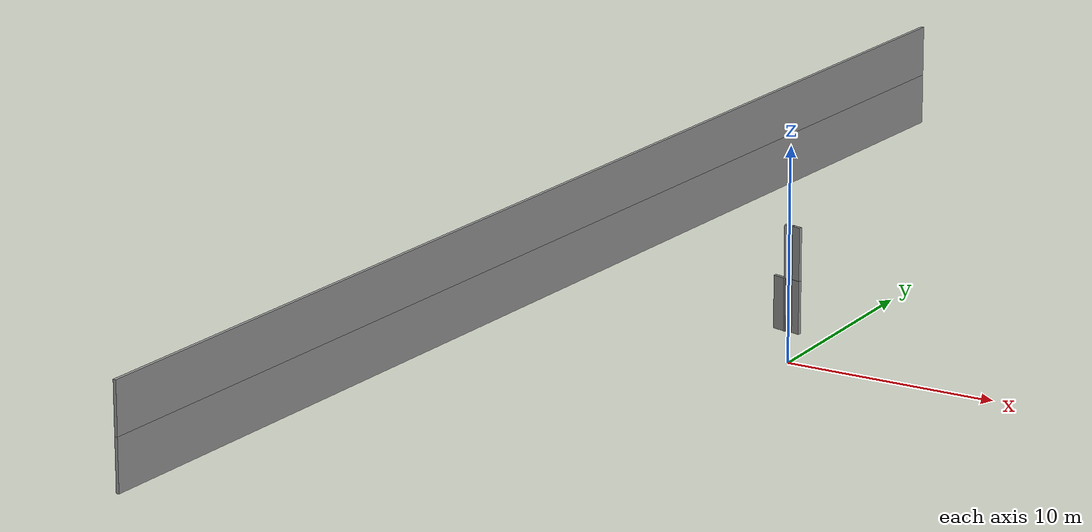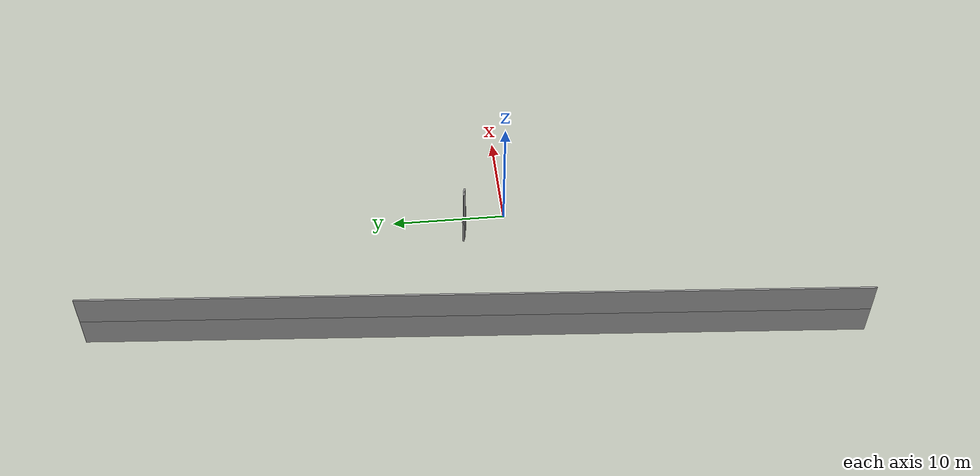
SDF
<sdf version="1.7">
 <model name="EnvDC01">
  <link name="Wall_128">
   <pose>-13.8802 3.78282 0 0 0 -1.64555</pose>
   <visual name="Wall_128_Visual">
    <pose>0 0 1.25 0 -0 0</pose>
    <geometry><box><size>64.2999 0.15 2.5</size></box></geometry>
    <material>
     <script><uri>file://media/materials/scripts/gazebo.material</uri><name>Gazebo/Grey</name></script>
     <ambient>1 1 1 1</ambient>
     <shader type="pixel"/>
    </material>
    <meta><layer>0</layer></meta>
   </visual>
   <collision name="Wall_128_Collision">
    <pose>0 0 1.25 0 -0 0</pose>
    <geometry><box><size>64.2999 0.15 2.5</size></box></geometry>
    <surface>
     <friction>
      <ode><mu>1</mu><mu2>1</mu2><fdir1>0 0 0</fdir1><slip1>0</slip1><slip2>0</slip2></ode>
      <torsional>
       <coefficient>1</coefficient>
       <patch_radius>0</patch_radius>
       <surface_radius>0</surface_radius>
       <use_patch_radius>1</use_patch_radius>
       <ode><slip>0</slip></ode>
      </torsional>
     </friction>
     <bounce><restitution_coefficient>0</restitution_coefficient><threshold>1e+06</threshold></bounce>
     <contact>
      <collide_without_contact>0</collide_without_contact>
      <collide_without_contact_bitmask>1</collide_without_contact_bitmask>
      <collide_bitmask>1</collide_bitmask>
      <ode>
       <soft_cfm>0</soft_cfm>
       <soft_erp>0.2</soft_erp>
       <kp>1e+13</kp>
       <kd>1</kd>
       <max_vel>0.01</max_vel>
       <min_depth>0</min_depth>
      </ode>
      <bullet>
       <split_impulse>1</split_impulse>
       <split_impulse_penetration_threshold>-0.01</split_impulse_penetration_threshold>
       <soft_cfm>0</soft_cfm>
       <soft_erp>0.2</soft_erp>
       <kp>1e+13</kp>
       <kd>1</kd>
      </bullet>
     </contact>
    </surface>
   </collision>
  </link>
  <link name="Wall_162">
   <pose>-1.63367 3.7136 0 0 -0 2.87979</pose>
   <visual name="Wall_162_Visual">
    <pose>0 0 1.25 0 -0 0</pose>
    <geometry><box><size>0.5 0.15 2.5</size></box></geometry>
    <material>
     <script><uri>file://media/materials/scripts/gazebo.material</uri><name>Gazebo/Grey</name></script>
     <ambient>1 1 1 1</ambient>
     <shader type="pixel"/>
    </material>
    <meta><layer>0</layer></meta>
   </visual>
   <collision name="Wall_162_Collision">
    <pose>0 0 1.25 0 -0 0</pose>
    <geometry><box><size>0.5 0.15 2.5</size></box></geometry>
    <surface>
     <friction>
      <ode><mu>1</mu><mu2>1</mu2><fdir1>0 0 0</fdir1><slip1>0</slip1><slip2>0</slip2></ode>
      <torsional>
       <coefficient>1</coefficient>
       <patch_radius>0</patch_radius>
       <surface_radius>0</surface_radius>
       <use_patch_radius>1</use_patch_radius>
       <ode><slip>0</slip></ode>
      </torsional>
     </friction>
     <bounce><restitution_coefficient>0</restitution_coefficient><threshold>1e+06</threshold></bounce>
     <contact>
      <collide_without_contact>0</collide_without_contact>
      <collide_without_contact_bitmask>1</collide_without_contact_bitmask>
      <collide_bitmask>1</collide_bitmask>
      <ode>
       <soft_cfm>0</soft_cfm>
       <soft_erp>0.2</soft_erp>
       <kp>1e+13</kp>
       <kd>1</kd>
       <max_vel>0.01</max_vel>
       <min_depth>0</min_depth>
      </ode>
      <bullet>
       <split_impulse>1</split_impulse>
       <split_impulse_penetration_threshold>-0.01</split_impulse_penetration_threshold>
       <soft_cfm>0</soft_cfm>
       <soft_erp>0.2</soft_erp>
       <kp>1e+13</kp>
       <kd>1</kd>
      </bullet>
     </contact>
    </surface>
   </collision>
  </link>
  <link name="Wall_163">
   <pose>-1.97771 3.75889 0 0 -0 3.14159</pose>
   <visual name="Wall_163_Visual">
    <pose>0 0 1.25 0 -0 0</pose>
    <geometry><box><size>0.5 0.15 2.5</size></box></geometry>
    <material>
     <script><uri>file://media/materials/scripts/gazebo.material</uri><name>Gazebo/Grey</name></script>
     <ambient>1 1 1 1</ambient>
     <shader type="pixel"/>
    </material>
    <meta><layer>0</layer></meta>
   </visual>
   <collision name="Wall_163_Collision">
    <pose>0 0 1.25 0 -0 0</pose>
    <geometry><box><size>0.5 0.15 2.5</size></box></geometry>
    <surface>
     <friction>
      <ode><mu>1</mu><mu2>1</mu2><fdir1>0 0 0</fdir1><slip1>0</slip1><slip2>0</slip2></ode>
      <torsional>
       <coefficient>1</coefficient>
       <patch_radius>0</patch_radius>
       <surface_radius>0</surface_radius>
       <use_patch_radius>1</use_patch_radius>
       <ode><slip>0</slip></ode>
      </torsional>
     </friction>
     <bounce><restitution_coefficient>0</restitution_coefficient><threshold>1e+06</threshold></bounce>
     <contact>
      <collide_without_contact>0</collide_without_contact>
      <collide_without_contact_bitmask>1</collide_without_contact_bitmask>
      <collide_bitmask>1</collide_bitmask>
      <ode>
       <soft_cfm>0</soft_cfm>
       <soft_erp>0.2</soft_erp>
       <kp>1e+13</kp>
       <kd>1</kd>
       <max_vel>0.01</max_vel>
       <min_depth>0</min_depth>
      </ode>
      <bullet>
       <split_impulse>1</split_impulse>
       <split_impulse_penetration_threshold>-0.01</split_impulse_penetration_threshold>
       <soft_cfm>0</soft_cfm>
       <soft_erp>0.2</soft_erp>
       <kp>1e+13</kp>
       <kd>1</kd>
      </bullet>
     </contact>
    </surface>
   </collision>
  </link>
  <link name="Wall_164">
   <pose>-2.44248 3.83653 0 0 -0 2.87979</pose>
   <visual name="Wall_164_Visual">
    <pose>0 0 1.25 0 -0 0</pose>
    <geometry><box><size>0.75 0.15 2.5</size></box></geometry>
    <material>
     <script><uri>file://media/materials/scripts/gazebo.material</uri><name>Gazebo/Grey</name></script>
     <ambient>1 1 1 1</ambient>
     <shader type="pixel"/>
    </material>
    <meta><layer>0</layer></meta>
   </visual>
   <collision name="Wall_164_Collision">
    <pose>0 0 1.25 0 -0 0</pose>
    <geometry><box><size>0.75 0.15 2.5</size></box></geometry>
    <surface>
     <friction>
      <ode><mu>1</mu><mu2>1</mu2><fdir1>0 0 0</fdir1><slip1>0</slip1><slip2>0</slip2></ode>
      <torsional>
       <coefficient>1</coefficient>
       <patch_radius>0</patch_radius>
       <surface_radius>0</surface_radius>
       <use_patch_radius>1</use_patch_radius>
       <ode><slip>0</slip></ode>
      </torsional>
     </friction>
     <bounce><restitution_coefficient>0</restitution_coefficient><threshold>1e+06</threshold></bounce>
     <contact>
      <collide_without_contact>0</collide_without_contact>
      <collide_without_contact_bitmask>1</collide_without_contact_bitmask>
      <collide_bitmask>1</collide_bitmask>
      <ode>
       <soft_cfm>0</soft_cfm>
       <soft_erp>0.2</soft_erp>
       <kp>1e+13</kp>
       <kd>1</kd>
       <max_vel>0.01</max_vel>
       <min_depth>0</min_depth>
      </ode>
      <bullet>
       <split_impulse>1</split_impulse>
       <split_impulse_penetration_threshold>-0.01</split_impulse_penetration_threshold>
       <soft_cfm>0</soft_cfm>
       <soft_erp>0.2</soft_erp>
       <kp>1e+13</kp>
       <kd>1</kd>
      </bullet>
     </contact>
    </surface>
   </collision>
  </link>
  <link name="Wall_327">
   <pose>-13.8802 3.78282 2.5 0 0 -1.64555</pose>
   <visual name="Wall_327_Visual">
    <pose>0 0 1.25 0 -0 0</pose>
    <geometry><box><size>64.2999 0.15 2.5</size></box></geometry>
    <material>
     <script><uri>file://media/materials/scripts/gazebo.material</uri><name>Gazebo/Grey</name></script>
     <ambient>1 1 1 1</ambient>
     <shader type="pixel"/>
    </material>
    <meta><layer>1</layer></meta>
   </visual>
   <collision name="Wall_327_Collision">
    <pose>0 0 1.25 0 -0 0</pose>
    <geometry><box><size>64.2999 0.15 2.5</size></box></geometry>
    <surface>
     <friction>
      <ode><mu>1</mu><mu2>1</mu2><fdir1>0 0 0</fdir1><slip1>0</slip1><slip2>0</slip2></ode>
      <torsional>
       <coefficient>1</coefficient>
       <patch_radius>0</patch_radius>
       <surface_radius>0</surface_radius>
       <use_patch_radius>1</use_patch_radius>
       <ode><slip>0</slip></ode>
      </torsional>
     </friction>
     <bounce><restitution_coefficient>0</restitution_coefficient><threshold>1e+06</threshold></bounce>
     <contact>
      <collide_without_contact>0</collide_without_contact>
      <collide_without_contact_bitmask>1</collide_without_contact_bitmask>
      <collide_bitmask>1</collide_bitmask>
      <ode>
       <soft_cfm>0</soft_cfm>
       <soft_erp>0.2</soft_erp>
       <kp>1e+13</kp>
       <kd>1</kd>
       <max_vel>0.01</max_vel>
       <min_depth>0</min_depth>
      </ode>
      <bullet>
       <split_impulse>1</split_impulse>
       <split_impulse_penetration_threshold>-0.01</split_impulse_penetration_threshold>
       <soft_cfm>0</soft_cfm>
       <soft_erp>0.2</soft_erp>
       <kp>1e+13</kp>
       <kd>1</kd>
      </bullet>
     </contact>
    </surface>
   </collision>
  </link>
  <link name="Wall_350">
   <pose>-1.63367 3.7136 2.5 0 -0 2.87979</pose>
   <visual name="Wall_350_Visual">
    <pose>0 0 1.25 0 -0 0</pose>
    <geometry><box><size>0.5 0.15 2.5</size></box></geometry>
    <material>
     <script><uri>file://media/materials/scripts/gazebo.material</uri><name>Gazebo/Grey</name></script>
     <ambient>1 1 1 1</ambient>
     <shader type="pixel"/>
    </material>
    <meta><layer>1</layer></meta>
   </visual>
   <collision name="Wall_350_Collision">
    <pose>0 0 1.25 0 -0 0</pose>
    <geometry><box><size>0.5 0.15 2.5</size></box></geometry>
    <surface>
     <friction>
      <ode><mu>1</mu><mu2>1</mu2><fdir1>0 0 0</fdir1><slip1>0</slip1><slip2>0</slip2></ode>
      <torsional>
       <coefficient>1</coefficient>
       <patch_radius>0</patch_radius>
       <surface_radius>0</surface_radius>
       <use_patch_radius>1</use_patch_radius>
       <ode><slip>0</slip></ode>
      </torsional>
     </friction>
     <bounce><restitution_coefficient>0</restitution_coefficient><threshold>1e+06</threshold></bounce>
     <contact>
      <collide_without_contact>0</collide_without_contact>
      <collide_without_contact_bitmask>1</collide_without_contact_bitmask>
      <collide_bitmask>1</collide_bitmask>
      <ode>
       <soft_cfm>0</soft_cfm>
       <soft_erp>0.2</soft_erp>
       <kp>1e+13</kp>
       <kd>1</kd>
       <max_vel>0.01</max_vel>
       <min_depth>0</min_depth>
      </ode>
      <bullet>
       <split_impulse>1</split_impulse>
       <split_impulse_penetration_threshold>-0.01</split_impulse_penetration_threshold>
       <soft_cfm>0</soft_cfm>
       <soft_erp>0.2</soft_erp>
       <kp>1e+13</kp>
       <kd>1</kd>
      </bullet>
     </contact>
    </surface>
   </collision>
  </link>
  <link name="Wall_351">
   <pose>-1.97771 3.75889 2.5 0 -0 3.14159</pose>
   <visual name="Wall_351_Visual">
    <pose>0 0 1.25 0 -0 0</pose>
    <geometry><box><size>0.5 0.15 2.5</size></box></geometry>
    <material>
     <script><uri>file://media/materials/scripts/gazebo.material</uri><name>Gazebo/Grey</name></script>
     <ambient>1 1 1 1</ambient>
     <shader type="pixel"/>
    </material>
    <meta><layer>1</layer></meta>
   </visual>
   <collision name="Wall_351_Collision">
    <pose>0 0 1.25 0 -0 0</pose>
    <geometry><box><size>0.5 0.15 2.5</size></box></geometry>
    <surface>
     <friction>
      <ode><mu>1</mu><mu2>1</mu2><fdir1>0 0 0</fdir1><slip1>0</slip1><slip2>0</slip2></ode>
      <torsional>
       <coefficient>1</coefficient>
       <patch_radius>0</patch_radius>
       <surface_radius>0</surface_radius>
       <use_patch_radius>1</use_patch_radius>
       <ode><slip>0</slip></ode>
      </torsional>
     </friction>
     <bounce><restitution_coefficient>0</restitution_coefficient><threshold>1e+06</threshold></bounce>
     <contact>
      <collide_without_contact>0</collide_without_contact>
      <collide_without_contact_bitmask>1</collide_without_contact_bitmask>
      <collide_bitmask>1</collide_bitmask>
      <ode>
       <soft_cfm>0</soft_cfm>
       <soft_erp>0.2</soft_erp>
       <kp>1e+13</kp>
       <kd>1</kd>
       <max_vel>0.01</max_vel>
       <min_depth>0</min_depth>
      </ode>
      <bullet>
       <split_impulse>1</split_impulse>
       <split_impulse_penetration_threshold>-0.01</split_impulse_penetration_threshold>
       <soft_cfm>0</soft_cfm>
       <soft_erp>0.2</soft_erp>
       <kp>1e+13</kp>
       <kd>1</kd>
      </bullet>
     </contact>
    </surface>
   </collision>
  </link>
  <static>1</static>
 </model>
</sdf>
